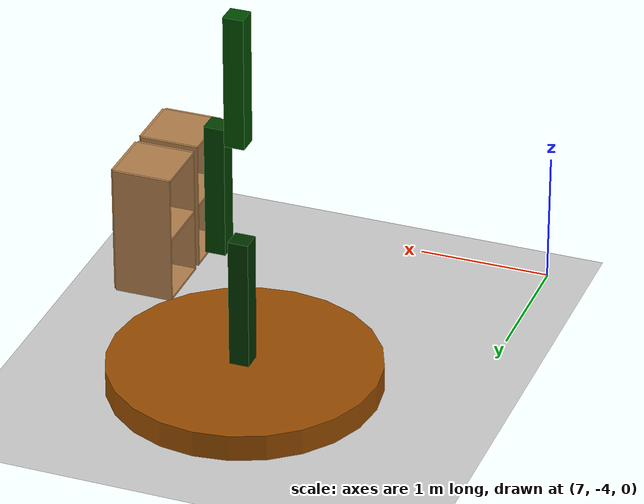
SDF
<sdf version="1.6">
 <world name="default">
  <model name="ground_plane">
   <static>1</static>
   <link name="link">
    <collision name="collision">
     <geometry><plane><normal>0 0 1</normal><size>100 100</size></plane></geometry>
     <surface><friction><ode><mu>100</mu><mu2>50</mu2></ode></friction></surface>
    </collision>
    <visual name="visual">
     <cast_shadows>0</cast_shadows>
     <geometry><plane><normal>0 0 1</normal><size>100 100</size></plane></geometry>
     <material>
      <script><uri>file://media/materials/scripts/gazebo.material</uri><name>Gazebo/Grey</name></script>
     </material>
    </visual>
   </link>
  </model>
  <model name="cabinet">
   <static>1</static>
   <link name="cabinet_bottom_plate">
    <inertial>
     <pose>0 0 -1 0 -0 0</pose>
     <inertia><ixx>2.05</ixx><ixy>0</ixy><ixz>0</ixz><iyy>2.05</iyy><iyz>0</iyz><izz>2.05</izz></inertia>
     <mass>25</mass>
    </inertial>
    <collision name="cabinet_bottom_plate_geom">
     <pose>0 0 0.01 0 -0 0</pose>
     <geometry><box><size>0.45 0.45 0.02</size></box></geometry>
    </collision>
    <visual name="cabinet_bottom_plate_geom_visual">
     <pose>0 0 0.01 0 -0 0</pose>
     <geometry><box><size>0.45 0.45 0.02</size></box></geometry>
     <material>
      <script><uri>file://media/materials/scripts/gazebo.material</uri><name>Gazebo/Wood</name></script>
     </material>
    </visual>
    <collision name="cabinet_bottom_plate_geom_cabinet_back_plate">
     <pose>0.235 0 0.51 0 -0 0</pose>
     <geometry><box><size>0.02 0.45 1.02</size></box></geometry>
    </collision>
    <visual name="cabinet_bottom_plate_geom_cabinet_back_plate_visual">
     <pose>0.235 0 0.51 0 -0 0</pose>
     <geometry><box><size>0.02 0.45 1.02</size></box></geometry>
     <material>
      <script><uri>file://media/materials/scripts/gazebo.material</uri><name>Gazebo/Wood</name></script>
     </material>
    </visual>
    <collision name="cabinet_bottom_plate_geom_cabinet_left_plate">
     <pose>0 0.235 0.51 0 -0 0</pose>
     <geometry><box><size>0.45 0.02 1.02</size></box></geometry>
    </collision>
    <visual name="cabinet_bottom_plate_geom_cabinet_left_plate_visual">
     <pose>0 0.235 0.51 0 -0 0</pose>
     <geometry><box><size>0.45 0.02 1.02</size></box></geometry>
     <material>
      <script><uri>file://media/materials/scripts/gazebo.material</uri><name>Gazebo/Wood</name></script>
     </material>
    </visual>
    <collision name="cabinet_bottom_plate_geom_cabinet_middle_plate">
     <pose>0 0 0.51 0 -0 0</pose>
     <geometry><box><size>0.45 0.45 0.02</size></box></geometry>
    </collision>
    <visual name="cabinet_bottom_plate_geom_cabinet_middle_plate_visual">
     <pose>0 0 0.51 0 -0 0</pose>
     <geometry><box><size>0.45 0.45 0.02</size></box></geometry>
     <material>
      <script><uri>file://media/materials/scripts/gazebo.material</uri><name>Gazebo/Wood</name></script>
     </material>
    </visual>
    <collision name="cabinet_bottom_plate_geom_cabinet_right_plate">
     <pose>0 -0.235 0.51 0 -0 0</pose>
     <geometry><box><size>0.45 0.02 1.02</size></box></geometry>
    </collision>
    <visual name="cabinet_bottom_plate_geom_cabinet_right_plate_visual">
     <pose>0 -0.235 0.51 0 -0 0</pose>
     <geometry><box><size>0.45 0.02 1.02</size></box></geometry>
     <material>
      <script><uri>file://media/materials/scripts/gazebo.material</uri><name>Gazebo/Wood</name></script>
     </material>
    </visual>
    <collision name="cabinet_bottom_plate_geom_cabinet_top_plate">
     <pose>0 0 1.01 0 -0 0</pose>
     <geometry><box><size>0.45 0.45 0.02</size></box></geometry>
    </collision>
    <visual name="cabinet_bottom_plate_geom_cabinet_top_plate_visual">
     <pose>0 0 1.01 0 -0 0</pose>
     <geometry><box><size>0.45 0.45 0.02</size></box></geometry>
     <material>
      <script><uri>file://media/materials/scripts/gazebo.material</uri><name>Gazebo/Wood</name></script>
     </material>
    </visual>
   </link>
   <pose>9.73583 -3.45752 0 0 -0 0</pose>
  </model>
  <model name="cabinet_0">
   <static>1</static>
   <link name="cabinet_bottom_plate">
    <inertial>
     <pose>0 0 -1 0 -0 0</pose>
     <inertia><ixx>2.05</ixx><ixy>0</ixy><ixz>0</ixz><iyy>2.05</iyy><iyz>0</iyz><izz>2.05</izz></inertia>
     <mass>25</mass>
    </inertial>
    <collision name="cabinet_bottom_plate_geom">
     <pose>0 0 0.01 0 -0 0</pose>
     <geometry><box><size>0.45 0.45 0.02</size></box></geometry>
    </collision>
    <visual name="cabinet_bottom_plate_geom_visual">
     <pose>0 0 0.01 0 -0 0</pose>
     <geometry><box><size>0.45 0.45 0.02</size></box></geometry>
     <material>
      <script><uri>file://media/materials/scripts/gazebo.material</uri><name>Gazebo/Wood</name></script>
     </material>
    </visual>
    <collision name="cabinet_bottom_plate_geom_cabinet_back_plate">
     <pose>0.235 0 0.51 0 -0 0</pose>
     <geometry><box><size>0.02 0.45 1.02</size></box></geometry>
    </collision>
    <visual name="cabinet_bottom_plate_geom_cabinet_back_plate_visual">
     <pose>0.235 0 0.51 0 -0 0</pose>
     <geometry><box><size>0.02 0.45 1.02</size></box></geometry>
     <material>
      <script><uri>file://media/materials/scripts/gazebo.material</uri><name>Gazebo/Wood</name></script>
     </material>
    </visual>
    <collision name="cabinet_bottom_plate_geom_cabinet_left_plate">
     <pose>0 0.235 0.51 0 -0 0</pose>
     <geometry><box><size>0.45 0.02 1.02</size></box></geometry>
    </collision>
    <visual name="cabinet_bottom_plate_geom_cabinet_left_plate_visual">
     <pose>0 0.235 0.51 0 -0 0</pose>
     <geometry><box><size>0.45 0.02 1.02</size></box></geometry>
     <material>
      <script><uri>file://media/materials/scripts/gazebo.material</uri><name>Gazebo/Wood</name></script>
     </material>
    </visual>
    <collision name="cabinet_bottom_plate_geom_cabinet_middle_plate">
     <pose>0 0 0.51 0 -0 0</pose>
     <geometry><box><size>0.45 0.45 0.02</size></box></geometry>
    </collision>
    <visual name="cabinet_bottom_plate_geom_cabinet_middle_plate_visual">
     <pose>0 0 0.51 0 -0 0</pose>
     <geometry><box><size>0.45 0.45 0.02</size></box></geometry>
     <material>
      <script><uri>file://media/materials/scripts/gazebo.material</uri><name>Gazebo/Wood</name></script>
     </material>
    </visual>
    <collision name="cabinet_bottom_plate_geom_cabinet_right_plate">
     <pose>0 -0.235 0.51 0 -0 0</pose>
     <geometry><box><size>0.45 0.02 1.02</size></box></geometry>
    </collision>
    <visual name="cabinet_bottom_plate_geom_cabinet_right_plate_visual">
     <pose>0 -0.235 0.51 0 -0 0</pose>
     <geometry><box><size>0.45 0.02 1.02</size></box></geometry>
     <material>
      <script><uri>file://media/materials/scripts/gazebo.material</uri><name>Gazebo/Wood</name></script>
     </material>
    </visual>
    <collision name="cabinet_bottom_plate_geom_cabinet_top_plate">
     <pose>0 0 1.01 0 -0 0</pose>
     <geometry><box><size>0.45 0.45 0.02</size></box></geometry>
    </collision>
    <visual name="cabinet_bottom_plate_geom_cabinet_top_plate_visual">
     <pose>0 0 1.01 0 -0 0</pose>
     <geometry><box><size>0.45 0.45 0.02</size></box></geometry>
     <material>
      <script><uri>file://media/materials/scripts/gazebo.material</uri><name>Gazebo/Wood</name></script>
     </material>
    </visual>
   </link>
   <pose>9.73326 -2.91173 0 0 -0 0</pose>
  </model>
  <model name="RobotArm">
   <link name="link_3">
    <pose>-0.050553 -0.019481 -1.11997 0 -0 0</pose>
    <inertial>
     <mass>1</mass>
     <inertia><ixx>0.145833</ixx><ixy>0</ixy><ixz>0</ixz><iyy>0.145833</iyy><iyz>0</iyz><izz>0.125</izz></inertia>
    </inertial>
    <visual name="visual">
     <geometry><cylinder><radius>1</radius><length>0.2</length></cylinder></geometry>
     <material>
      <lighting>1</lighting>
      <script><uri>file://media/materials/scripts/gazebo.material</uri><name>Gazebo/Grey</name></script>
      <shader type="pixel"><normal_map>__default__</normal_map></shader>
      <ambient>0.6 0.3 0 1</ambient>
      <diffuse>0.6 0.3 0 1</diffuse>
      <specular>0.6 0.3 0 1</specular>
      <emissive>0 0 0 1</emissive>
     </material>
    </visual>
    <collision name="collision">
     <geometry><cylinder><radius>1</radius><length>0.2</length></cylinder></geometry>
     <surface>
      <friction>
       <ode><mu>1</mu><mu2>1</mu2><fdir1>0 0 0</fdir1><slip1>0</slip1><slip2>0</slip2></ode>
       <torsional>
        <coefficient>1</coefficient>
        <patch_radius>0</patch_radius>
        <surface_radius>0</surface_radius>
        <use_patch_radius>1</use_patch_radius>
        <ode><slip>0</slip></ode>
       </torsional>
      </friction>
      <bounce><restitution_coefficient>0</restitution_coefficient><threshold>1e+06</threshold></bounce>
      <contact>
       <collide_without_contact>0</collide_without_contact>
       <collide_without_contact_bitmask>1</collide_without_contact_bitmask>
       <collide_bitmask>1</collide_bitmask>
       <ode>
        <soft_cfm>0</soft_cfm>
        <soft_erp>0.2</soft_erp>
        <kp>1e+13</kp>
        <kd>1</kd>
        <max_vel>0.01</max_vel>
        <min_depth>0</min_depth>
       </ode>
       <bullet>
        <split_impulse>1</split_impulse>
        <split_impulse_penetration_threshold>-0.01</split_impulse_penetration_threshold>
        <soft_cfm>0</soft_cfm>
        <soft_erp>0.2</soft_erp>
        <kp>1e+13</kp>
        <kd>1</kd>
       </bullet>
      </contact>
     </surface>
    </collision>
   </link>
   <link name="link_4">
    <pose>-0.036835 -0.015173 -0.524797 0 -0 0</pose>
    <inertial>
     <mass>1</mass>
     <inertia>
      <ixx>0.166667</ixx>
      <ixy>0</ixy>
      <ixz>0</ixz>
      <iyy>0.166667</iyy>
      <iyz>0</iyz>
      <izz>0.166667</izz>
     </inertia>
    </inertial>
    <visual name="visual">
     <geometry><box><size>0.15 0.15 1</size></box></geometry>
     <material>
      <lighting>1</lighting>
      <script><uri>file://media/materials/scripts/gazebo.material</uri><name>Gazebo/Grey</name></script>
      <shader type="pixel"><normal_map>__default__</normal_map></shader>
      <ambient>0 0.2 0 1</ambient>
      <diffuse>0 0.2 0 1</diffuse>
      <specular>0 0.2 0 1</specular>
      <emissive>0 0 0 1</emissive>
     </material>
    </visual>
    <collision name="collision">
     <geometry><box><size>0.15 0.15 1</size></box></geometry>
     <surface>
      <friction>
       <ode><mu>1</mu><mu2>1</mu2><fdir1>0 0 0</fdir1><slip1>0</slip1><slip2>0</slip2></ode>
       <torsional>
        <coefficient>1</coefficient>
        <patch_radius>0</patch_radius>
        <surface_radius>0</surface_radius>
        <use_patch_radius>1</use_patch_radius>
        <ode><slip>0</slip></ode>
       </torsional>
      </friction>
      <bounce><restitution_coefficient>0</restitution_coefficient><threshold>1e+06</threshold></bounce>
      <contact>
       <collide_without_contact>0</collide_without_contact>
       <collide_without_contact_bitmask>1</collide_without_contact_bitmask>
       <collide_bitmask>1</collide_bitmask>
       <ode>
        <soft_cfm>0</soft_cfm>
        <soft_erp>0.2</soft_erp>
        <kp>1e+13</kp>
        <kd>1</kd>
        <max_vel>0.01</max_vel>
        <min_depth>0</min_depth>
       </ode>
       <bullet>
        <split_impulse>1</split_impulse>
        <split_impulse_penetration_threshold>-0.01</split_impulse_penetration_threshold>
        <soft_cfm>0</soft_cfm>
        <soft_erp>0.2</soft_erp>
        <kp>1e+13</kp>
        <kd>1</kd>
       </bullet>
      </contact>
     </surface>
    </collision>
   </link>
   <link name="link_4_clone">
    <pose>0.118694 0.017327 0.385877 0 -0 0</pose>
    <inertial>
     <mass>1</mass>
     <inertia>
      <ixx>0.166667</ixx>
      <ixy>0</ixy>
      <ixz>0</ixz>
      <iyy>0.166667</iyy>
      <iyz>0</iyz>
      <izz>0.166667</izz>
     </inertia>
    </inertial>
    <visual name="visual">
     <geometry><box><size>0.15 0.15 1</size></box></geometry>
     <material>
      <lighting>1</lighting>
      <script><uri>file://media/materials/scripts/gazebo.material</uri><name>Gazebo/Grey</name></script>
      <shader type="pixel"><normal_map>__default__</normal_map></shader>
      <ambient>0 0.25 0 1</ambient>
      <diffuse>0 0.25 0 1</diffuse>
      <specular>0 0.25 0 1</specular>
      <emissive>0 0 0 1</emissive>
     </material>
    </visual>
    <collision name="collision">
     <geometry><box><size>0.15 0.15 1</size></box></geometry>
     <surface>
      <friction>
       <ode><mu>1</mu><mu2>1</mu2><fdir1>0 0 0</fdir1><slip1>0</slip1><slip2>0</slip2></ode>
       <torsional>
        <coefficient>1</coefficient>
        <patch_radius>0</patch_radius>
        <surface_radius>0</surface_radius>
        <use_patch_radius>1</use_patch_radius>
        <ode><slip>0</slip></ode>
       </torsional>
      </friction>
      <bounce><restitution_coefficient>0</restitution_coefficient><threshold>1e+06</threshold></bounce>
      <contact>
       <collide_without_contact>0</collide_without_contact>
       <collide_without_contact_bitmask>1</collide_without_contact_bitmask>
       <collide_bitmask>1</collide_bitmask>
       <ode>
        <soft_cfm>0</soft_cfm>
        <soft_erp>0.2</soft_erp>
        <kp>1e+13</kp>
        <kd>1</kd>
        <max_vel>0.01</max_vel>
        <min_depth>0</min_depth>
       </ode>
       <bullet>
        <split_impulse>1</split_impulse>
        <split_impulse_penetration_threshold>-0.01</split_impulse_penetration_threshold>
        <soft_cfm>0</soft_cfm>
        <soft_erp>0.2</soft_erp>
        <kp>1e+13</kp>
        <kd>1</kd>
       </bullet>
      </contact>
     </surface>
    </collision>
   </link>
   <link name="link_4_clone_0">
    <pose>-0.031306 0.017327 1.2589 0 -0 0</pose>
    <inertial>
     <mass>1</mass>
     <inertia>
      <ixx>0.166667</ixx>
      <ixy>0</ixy>
      <ixz>0</ixz>
      <iyy>0.166667</iyy>
      <iyz>0</iyz>
      <izz>0.166667</izz>
     </inertia>
    </inertial>
    <visual name="visual">
     <geometry><box><size>0.15 0.15 1</size></box></geometry>
     <material>
      <lighting>1</lighting>
      <script><uri>file://media/materials/scripts/gazebo.material</uri><name>Gazebo/Grey</name></script>
      <shader type="pixel"><normal_map>__default__</normal_map></shader>
      <ambient>0 0.3 0 1</ambient>
      <diffuse>0 0.3 0 1</diffuse>
      <specular>0 0.3 0 1</specular>
      <emissive>0 0 0 1</emissive>
     </material>
    </visual>
    <collision name="collision">
     <geometry><box><size>0.15 0.15 1</size></box></geometry>
     <surface>
      <friction>
       <ode><mu>1</mu><mu2>1</mu2><fdir1>0 0 0</fdir1><slip1>0</slip1><slip2>0</slip2></ode>
       <torsional>
        <coefficient>1</coefficient>
        <patch_radius>0</patch_radius>
        <surface_radius>0</surface_radius>
        <use_patch_radius>1</use_patch_radius>
        <ode><slip>0</slip></ode>
       </torsional>
      </friction>
      <bounce><restitution_coefficient>0</restitution_coefficient><threshold>1e+06</threshold></bounce>
      <contact>
       <collide_without_contact>0</collide_without_contact>
       <collide_without_contact_bitmask>1</collide_without_contact_bitmask>
       <collide_bitmask>1</collide_bitmask>
       <ode>
        <soft_cfm>0</soft_cfm>
        <soft_erp>0.2</soft_erp>
        <kp>1e+13</kp>
        <kd>1</kd>
        <max_vel>0.01</max_vel>
        <min_depth>0</min_depth>
       </ode>
       <bullet>
        <split_impulse>1</split_impulse>
        <split_impulse_penetration_threshold>-0.01</split_impulse_penetration_threshold>
        <soft_cfm>0</soft_cfm>
        <soft_erp>0.2</soft_erp>
        <kp>1e+13</kp>
        <kd>1</kd>
       </bullet>
      </contact>
     </surface>
    </collision>
   </link>
   <joint name="link_3_JOINT_4" type="fixed">
    <parent>link_3</parent>
    <child>link_4</child>
    <physics>
     <ode><limit><cfm>0</cfm><erp>0.2</erp></limit><suspension><cfm>0</cfm><erp>0.2</erp></suspension></ode>
    </physics>
   </joint>
   <joint name="link_4_JOINT_6" type="revolute">
    <parent>link_4</parent>
    <child>link_4_clone</child>
    <pose>0 0 -0.5 0 -0 0</pose>
    <axis>
     <xyz>1 0 0</xyz>
     <use_parent_model_frame>0</use_parent_model_frame>
     <limit>
      <lower>-1.79769e+308</lower>
      <upper>1.79769e+308</upper>
      <effort>-1</effort>
      <velocity>-1</velocity>
     </limit>
     <dynamics>
      <spring_reference>0</spring_reference>
      <spring_stiffness>0</spring_stiffness>
      <damping>0</damping>
      <friction>0</friction>
     </dynamics>
    </axis>
    <physics>
     <ode><limit><cfm>0</cfm><erp>0.2</erp></limit><suspension><cfm>0</cfm><erp>0.2</erp></suspension></ode>
    </physics>
   </joint>
   <joint name="link_4_clone_JOINT_7" type="revolute">
    <parent>link_4_clone</parent>
    <child>link_4_clone_0</child>
    <pose>0 0 -0.5 0 -0 0</pose>
    <axis>
     <xyz>1 0 0</xyz>
     <use_parent_model_frame>0</use_parent_model_frame>
     <limit>
      <lower>-1.79769e+308</lower>
      <upper>1.79769e+308</upper>
      <effort>-1</effort>
      <velocity>-1</velocity>
     </limit>
     <dynamics>
      <spring_reference>0</spring_reference>
      <spring_stiffness>0</spring_stiffness>
      <damping>0</damping>
      <friction>0</friction>
     </dynamics>
    </axis>
    <physics>
     <ode><limit><cfm>0</cfm><erp>0.2</erp></limit><suspension><cfm>0</cfm><erp>0.2</erp></suspension></ode>
    </physics>
   </joint>
   <static>0</static>
   <pose>8.54399 -1.55556 1.36891 0 -0 0</pose>
  </model>
 </world>
</sdf>
